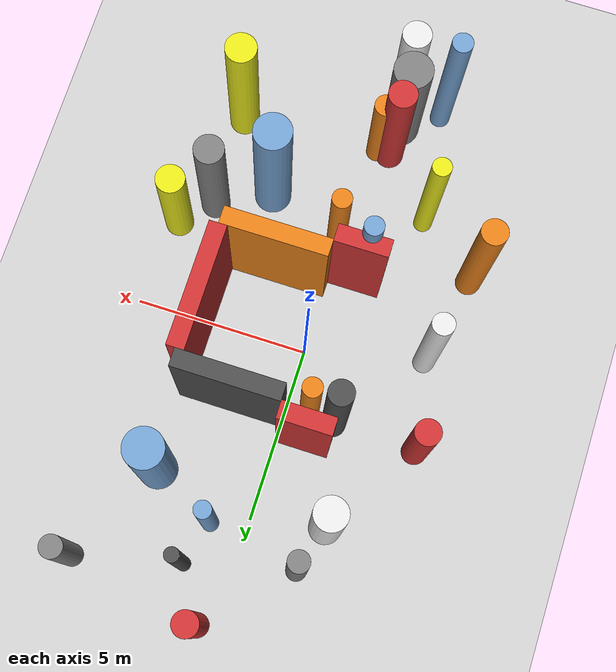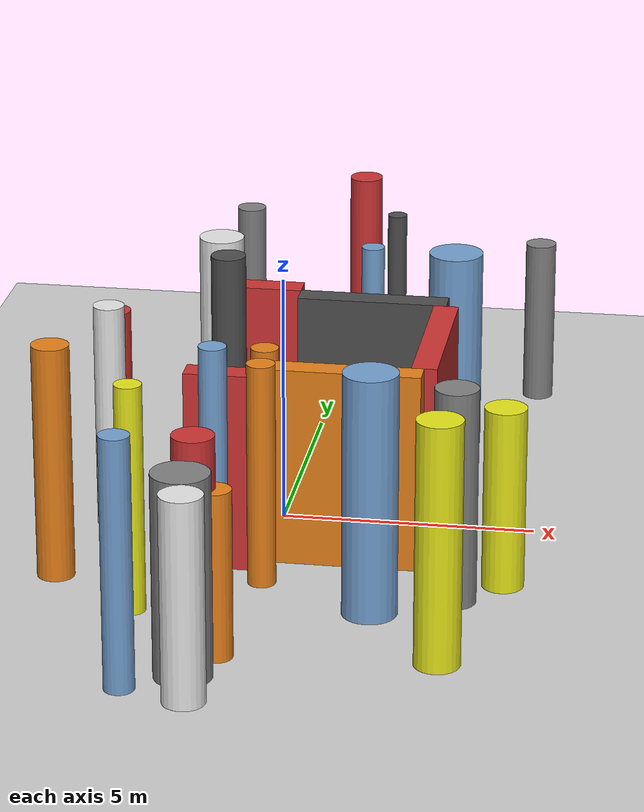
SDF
<?xml version='1.0'?>
<sdf version='1.6'>
  <world name='routeA_rl_v1__dense_recovery__rl_train__cul_de_sac_trap__000035'>
    <!-- Sun light -->
    <light name='sun' type='directional'>
      <cast_shadows>1</cast_shadows>
      <pose>0 0 10 0 0 0</pose>
      <diffuse>0.8 0.8 0.8 1</diffuse>
      <specular>0.2 0.2 0.2 1</specular>
      <attenuation>
        <range>1000</range>
        <constant>0.9</constant>
        <linear>0.01</linear>
        <quadratic>0.001</quadratic>
      </attenuation>
      <direction>-0.5 0.1 -0.9</direction>
    </light>

    <!-- Ground plane -->
    <model name='ground_plane'>
      <static>1</static>
      <link name='link'>
        <collision name='collision'>
          <geometry>
            <plane>
              <normal>0 0 1</normal>
              <size>100 100</size>
            </plane>
          </geometry>
          <surface>
            <contact>
              <collide_bitmask>65535</collide_bitmask>
              <ode/>
            </contact>
            <friction>
              <ode>
                <mu>100</mu>
                <mu2>50</mu2>
              </ode>
              <torsional><ode/></torsional>
            </friction>
            <bounce/>
          </surface>
          <max_contacts>10</max_contacts>
        </collision>
        <visual name='visual'>
          <cast_shadows>0</cast_shadows>
          <geometry>
            <plane>
              <normal>0 0 1</normal>
              <size>100 100</size>
            </plane>
          </geometry>
          <material>
            <script>
              <uri>file://media/materials/scripts/gazebo.material</uri>
              <n>Gazebo/Grey</n>
            </script>
          </material>
        </visual>
      </link>
    </model>

    <!-- Environment -->
    <magnetic_field>6e-06 2.3e-05 -4.2e-05</magnetic_field>
    <atmosphere type='adiabatic'/>
    <physics name='default_physics' default='0' type='ode'>
      <gravity>0 0 -9.8</gravity>
      <max_step_size>0.004</max_step_size>
      <real_time_factor>1</real_time_factor>
      <real_time_update_rate>250</real_time_update_rate>
    </physics>
    <scene>
      <ambient>0.4 0.4 0.4 1</ambient>
      <background>0.7 0.7 0.7 1</background>
      <shadows>1</shadows>
    </scene>
    <wind/>
    <spherical_coordinates>
      <surface_model>EARTH_WGS84</surface_model>
      <latitude_deg>0</latitude_deg>
      <longitude_deg>0</longitude_deg>
      <elevation>0</elevation>
      <heading_deg>0</heading_deg>
    </spherical_coordinates>

    <!-- ============ OBSTACLES (29) ============ -->
    <model name='trap_side_l'>
      <static>1</static>
      <link name='link'>
        <visual name='visual'>
          <geometry>
            <box>
              <size>3.0000 0.5000 4.0000</size>
            </box>
          </geometry>
          <material>
            <script>
              <n>Gazebo/Orange</n>
              <uri>file://media/materials/scripts/gazebo.material</uri>
            </script>
            <ambient>0.9 0.5 0.1 1</ambient>
          </material>
        </visual>
        <collision name='collision'>
          <geometry>
            <box>
              <size>3.0000 0.5000 4.0000</size>
            </box>
          </geometry>
          <max_contacts>10</max_contacts>
          <surface>
            <contact><ode/></contact>
            <bounce/>
            <friction>
              <ode><mu>1</mu><mu2>1</mu2></ode>
              <torsional><ode/></torsional>
            </friction>
          </surface>
        </collision>
      </link>
      <pose>1.5000 -2.0000 2.0000 0 0 0.0000</pose>
    </model>

    <model name='trap_side_r'>
      <static>1</static>
      <link name='link'>
        <visual name='visual'>
          <geometry>
            <box>
              <size>3.0000 0.5000 4.0000</size>
            </box>
          </geometry>
          <material>
            <script>
              <n>Gazebo/DarkGrey</n>
              <uri>file://media/materials/scripts/gazebo.material</uri>
            </script>
            <ambient>0.3 0.3 0.3 1</ambient>
          </material>
        </visual>
        <collision name='collision'>
          <geometry>
            <box>
              <size>3.0000 0.5000 4.0000</size>
            </box>
          </geometry>
          <max_contacts>10</max_contacts>
          <surface>
            <contact><ode/></contact>
            <bounce/>
            <friction>
              <ode><mu>1</mu><mu2>1</mu2></ode>
              <torsional><ode/></torsional>
            </friction>
          </surface>
        </collision>
      </link>
      <pose>1.5000 2.0000 2.0000 0 0 0.0000</pose>
    </model>

    <model name='trap_back'>
      <static>1</static>
      <link name='link'>
        <visual name='visual'>
          <geometry>
            <box>
              <size>0.5000 3.5000 4.0000</size>
            </box>
          </geometry>
          <material>
            <script>
              <n>Gazebo/Red</n>
              <uri>file://media/materials/scripts/gazebo.material</uri>
            </script>
            <ambient>0.8 0.2 0.2 1</ambient>
          </material>
        </visual>
        <collision name='collision'>
          <geometry>
            <box>
              <size>0.5000 3.5000 4.0000</size>
            </box>
          </geometry>
          <max_contacts>10</max_contacts>
          <surface>
            <contact><ode/></contact>
            <bounce/>
            <friction>
              <ode><mu>1</mu><mu2>1</mu2></ode>
              <torsional><ode/></torsional>
            </friction>
          </surface>
        </collision>
      </link>
      <pose>3.0000 0.0000 2.0000 0 0 0.0000</pose>
    </model>

    <model name='trap_funnel_l'>
      <static>1</static>
      <link name='link'>
        <visual name='visual'>
          <geometry>
            <box>
              <size>1.5000 0.5000 4.0000</size>
            </box>
          </geometry>
          <material>
            <script>
              <n>Gazebo/Red</n>
              <uri>file://media/materials/scripts/gazebo.material</uri>
            </script>
            <ambient>0.8 0.2 0.2 1</ambient>
          </material>
        </visual>
        <collision name='collision'>
          <geometry>
            <box>
              <size>1.5000 0.5000 4.0000</size>
            </box>
          </geometry>
          <max_contacts>10</max_contacts>
          <surface>
            <contact><ode/></contact>
            <bounce/>
            <friction>
              <ode><mu>1</mu><mu2>1</mu2></ode>
              <torsional><ode/></torsional>
            </friction>
          </surface>
        </collision>
      </link>
      <pose>-0.7500 -2.4500 2.0000 0 0 0.0000</pose>
    </model>

    <model name='trap_funnel_r'>
      <static>1</static>
      <link name='link'>
        <visual name='visual'>
          <geometry>
            <box>
              <size>1.5000 0.5000 4.0000</size>
            </box>
          </geometry>
          <material>
            <script>
              <n>Gazebo/Red</n>
              <uri>file://media/materials/scripts/gazebo.material</uri>
            </script>
            <ambient>0.8 0.2 0.2 1</ambient>
          </material>
        </visual>
        <collision name='collision'>
          <geometry>
            <box>
              <size>1.5000 0.5000 4.0000</size>
            </box>
          </geometry>
          <max_contacts>10</max_contacts>
          <surface>
            <contact><ode/></contact>
            <bounce/>
            <friction>
              <ode><mu>1</mu><mu2>1</mu2></ode>
              <torsional><ode/></torsional>
            </friction>
          </surface>
        </collision>
      </link>
      <pose>-0.7500 2.4500 2.0000 0 0 0.0000</pose>
    </model>

    <model name='trap_scatter_0'>
      <static>1</static>
      <link name='link'>
        <visual name='visual'>
          <geometry>
            <cylinder>
              <radius>0.2419</radius>
              <length>3.8888</length>
            </cylinder>
          </geometry>
          <material>
            <script>
              <n>Gazebo/Blue</n>
              <uri>file://media/materials/scripts/gazebo.material</uri>
            </script>
            <ambient>0.447 0.624 0.812 1</ambient>
          </material>
        </visual>
        <collision name='collision'>
          <geometry>
            <cylinder>
              <radius>0.2419</radius>
              <length>3.8888</length>
            </cylinder>
          </geometry>
          <max_contacts>10</max_contacts>
          <surface>
            <contact><ode/></contact>
            <bounce/>
            <friction>
              <ode><mu>1</mu><mu2>1</mu2></ode>
              <torsional><ode/></torsional>
            </friction>
          </surface>
        </collision>
      </link>
      <pose>1.0242 5.4147 1.9444 0 0 0.0000</pose>
    </model>

    <model name='trap_scatter_1'>
      <static>1</static>
      <link name='link'>
        <visual name='visual'>
          <geometry>
            <cylinder>
              <radius>0.3171</radius>
              <length>3.3295</length>
            </cylinder>
          </geometry>
          <material>
            <script>
              <n>Gazebo/Orange</n>
              <uri>file://media/materials/scripts/gazebo.material</uri>
            </script>
            <ambient>0.9 0.5 0.1 1</ambient>
          </material>
        </visual>
        <collision name='collision'>
          <geometry>
            <cylinder>
              <radius>0.3171</radius>
              <length>3.3295</length>
            </cylinder>
          </geometry>
          <max_contacts>10</max_contacts>
          <surface>
            <contact><ode/></contact>
            <bounce/>
            <friction>
              <ode><mu>1</mu><mu2>1</mu2></ode>
              <torsional><ode/></torsional>
            </friction>
          </surface>
        </collision>
      </link>
      <pose>-0.1936 -6.5398 1.6647 0 0 0.0000</pose>
    </model>

    <model name='trap_scatter_2'>
      <static>1</static>
      <link name='link'>
        <visual name='visual'>
          <geometry>
            <cylinder>
              <radius>0.3630</radius>
              <length>3.5282</length>
            </cylinder>
          </geometry>
          <material>
            <script>
              <n>Gazebo/Red</n>
              <uri>file://media/materials/scripts/gazebo.material</uri>
            </script>
            <ambient>0.8 0.2 0.2 1</ambient>
          </material>
        </visual>
        <collision name='collision'>
          <geometry>
            <cylinder>
              <radius>0.3630</radius>
              <length>3.5282</length>
            </cylinder>
          </geometry>
          <max_contacts>10</max_contacts>
          <surface>
            <contact><ode/></contact>
            <bounce/>
            <friction>
              <ode><mu>1</mu><mu2>1</mu2></ode>
              <torsional><ode/></torsional>
            </friction>
          </surface>
        </collision>
      </link>
      <pose>-3.7858 1.7828 1.7641 0 0 0.0000</pose>
    </model>

    <model name='trap_scatter_3'>
      <static>1</static>
      <link name='link'>
        <visual name='visual'>
          <geometry>
            <cylinder>
              <radius>0.2759</radius>
              <length>4.4942</length>
            </cylinder>
          </geometry>
          <material>
            <script>
              <n>Gazebo/Orange</n>
              <uri>file://media/materials/scripts/gazebo.material</uri>
            </script>
            <ambient>0.9 0.5 0.1 1</ambient>
          </material>
        </visual>
        <collision name='collision'>
          <geometry>
            <cylinder>
              <radius>0.2759</radius>
              <length>4.4942</length>
            </cylinder>
          </geometry>
          <max_contacts>10</max_contacts>
          <surface>
            <contact><ode/></contact>
            <bounce/>
            <friction>
              <ode><mu>1</mu><mu2>1</mu2></ode>
              <torsional><ode/></torsional>
            </friction>
          </surface>
        </collision>
      </link>
      <pose>0.0906 -3.2009 2.2471 0 0 0.0000</pose>
    </model>

    <model name='trap_scatter_4'>
      <static>1</static>
      <link name='link'>
        <visual name='visual'>
          <geometry>
            <cylinder>
              <radius>0.5318</radius>
              <length>4.8562</length>
            </cylinder>
          </geometry>
          <material>
            <script>
              <n>Gazebo/Blue</n>
              <uri>file://media/materials/scripts/gazebo.material</uri>
            </script>
            <ambient>0.447 0.624 0.812 1</ambient>
          </material>
        </visual>
        <collision name='collision'>
          <geometry>
            <cylinder>
              <radius>0.5318</radius>
              <length>4.8562</length>
            </cylinder>
          </geometry>
          <max_contacts>10</max_contacts>
          <surface>
            <contact><ode/></contact>
            <bounce/>
            <friction>
              <ode><mu>1</mu><mu2>1</mu2></ode>
              <torsional><ode/></torsional>
            </friction>
          </surface>
        </collision>
      </link>
      <pose>2.3197 -4.2687 2.4281 0 0 0.0000</pose>
    </model>

    <model name='trap_scatter_5'>
      <static>1</static>
      <link name='link'>
        <visual name='visual'>
          <geometry>
            <cylinder>
              <radius>0.2892</radius>
              <length>4.9316</length>
            </cylinder>
          </geometry>
          <material>
            <script>
              <n>Gazebo/Blue</n>
              <uri>file://media/materials/scripts/gazebo.material</uri>
            </script>
            <ambient>0.447 0.624 0.812 1</ambient>
          </material>
        </visual>
        <collision name='collision'>
          <geometry>
            <cylinder>
              <radius>0.2892</radius>
              <length>4.9316</length>
            </cylinder>
          </geometry>
          <max_contacts>10</max_contacts>
          <surface>
            <contact><ode/></contact>
            <bounce/>
            <friction>
              <ode><mu>1</mu><mu2>1</mu2></ode>
              <torsional><ode/></torsional>
            </friction>
          </surface>
        </collision>
      </link>
      <pose>-1.6786 -8.1320 2.4658 0 0 0.0000</pose>
    </model>

    <model name='trap_scatter_6'>
      <static>1</static>
      <link name='link'>
        <visual name='visual'>
          <geometry>
            <cylinder>
              <radius>0.3080</radius>
              <length>4.5846</length>
            </cylinder>
          </geometry>
          <material>
            <script>
              <n>Gazebo/White</n>
              <uri>file://media/materials/scripts/gazebo.material</uri>
            </script>
            <ambient>0.9 0.9 0.9 1</ambient>
          </material>
        </visual>
        <collision name='collision'>
          <geometry>
            <cylinder>
              <radius>0.3080</radius>
              <length>4.5846</length>
            </cylinder>
          </geometry>
          <max_contacts>10</max_contacts>
          <surface>
            <contact><ode/></contact>
            <bounce/>
            <friction>
              <ode><mu>1</mu><mu2>1</mu2></ode>
              <torsional><ode/></torsional>
            </friction>
          </surface>
        </collision>
      </link>
      <pose>-3.3160 -0.7744 2.2923 0 0 0.0000</pose>
    </model>

    <model name='trap_scatter_7'>
      <static>1</static>
      <link name='link'>
        <visual name='visual'>
          <geometry>
            <cylinder>
              <radius>0.4226</radius>
              <length>4.3386</length>
            </cylinder>
          </geometry>
          <material>
            <script>
              <n>Gazebo/Grey</n>
              <uri>file://media/materials/scripts/gazebo.material</uri>
            </script>
            <ambient>0.5 0.5 0.5 1</ambient>
          </material>
        </visual>
        <collision name='collision'>
          <geometry>
            <cylinder>
              <radius>0.4226</radius>
              <length>4.3386</length>
            </cylinder>
          </geometry>
          <max_contacts>10</max_contacts>
          <surface>
            <contact><ode/></contact>
            <bounce/>
            <friction>
              <ode><mu>1</mu><mu2>1</mu2></ode>
              <torsional><ode/></torsional>
            </friction>
          </surface>
        </collision>
      </link>
      <pose>3.8293 -3.4850 2.1693 0 0 0.0000</pose>
    </model>

    <model name='trap_scatter_8'>
      <static>1</static>
      <link name='link'>
        <visual name='visual'>
          <geometry>
            <cylinder>
              <radius>0.2954</radius>
              <length>4.4601</length>
            </cylinder>
          </geometry>
          <material>
            <script>
              <n>Gazebo/Grey</n>
              <uri>file://media/materials/scripts/gazebo.material</uri>
            </script>
            <ambient>0.5 0.5 0.5 1</ambient>
          </material>
        </visual>
        <collision name='collision'>
          <geometry>
            <cylinder>
              <radius>0.2954</radius>
              <length>4.4601</length>
            </cylinder>
          </geometry>
          <max_contacts>10</max_contacts>
          <surface>
            <contact><ode/></contact>
            <bounce/>
            <friction>
              <ode><mu>1</mu><mu2>1</mu2></ode>
              <torsional><ode/></torsional>
            </friction>
          </surface>
        </collision>
      </link>
      <pose>-1.6339 5.9256 2.2301 0 0 0.0000</pose>
    </model>

    <model name='trap_scatter_9'>
      <static>1</static>
      <link name='link'>
        <visual name='visual'>
          <geometry>
            <cylinder>
              <radius>0.3653</radius>
              <length>4.7331</length>
            </cylinder>
          </geometry>
          <material>
            <script>
              <n>Gazebo/Orange</n>
              <uri>file://media/materials/scripts/gazebo.material</uri>
            </script>
            <ambient>0.9 0.5 0.1 1</ambient>
          </material>
        </visual>
        <collision name='collision'>
          <geometry>
            <cylinder>
              <radius>0.3653</radius>
              <length>4.7331</length>
            </cylinder>
          </geometry>
          <max_contacts>10</max_contacts>
          <surface>
            <contact><ode/></contact>
            <bounce/>
            <friction>
              <ode><mu>1</mu><mu2>1</mu2></ode>
              <torsional><ode/></torsional>
            </friction>
          </surface>
        </collision>
      </link>
      <pose>-3.8827 -3.4439 2.3666 0 0 0.0000</pose>
    </model>

    <model name='trap_scatter_10'>
      <static>1</static>
      <link name='link'>
        <visual name='visual'>
          <geometry>
            <cylinder>
              <radius>0.3462</radius>
              <length>4.5172</length>
            </cylinder>
          </geometry>
          <material>
            <script>
              <n>Gazebo/Red</n>
              <uri>file://media/materials/scripts/gazebo.material</uri>
            </script>
            <ambient>0.8 0.2 0.2 1</ambient>
          </material>
        </visual>
        <collision name='collision'>
          <geometry>
            <cylinder>
              <radius>0.3462</radius>
              <length>4.5172</length>
            </cylinder>
          </geometry>
          <max_contacts>10</max_contacts>
          <surface>
            <contact><ode/></contact>
            <bounce/>
            <friction>
              <ode><mu>1</mu><mu2>1</mu2></ode>
              <torsional><ode/></torsional>
            </friction>
          </surface>
        </collision>
      </link>
      <pose>0.4982 8.1501 2.2586 0 0 0.0000</pose>
    </model>

    <model name='trap_scatter_11'>
      <static>1</static>
      <link name='link'>
        <visual name='visual'>
          <geometry>
            <cylinder>
              <radius>0.4648</radius>
              <length>4.2395</length>
            </cylinder>
          </geometry>
          <material>
            <script>
              <n>Gazebo/White</n>
              <uri>file://media/materials/scripts/gazebo.material</uri>
            </script>
            <ambient>0.9 0.9 0.9 1</ambient>
          </material>
        </visual>
        <collision name='collision'>
          <geometry>
            <cylinder>
              <radius>0.4648</radius>
              <length>4.2395</length>
            </cylinder>
          </geometry>
          <max_contacts>10</max_contacts>
          <surface>
            <contact><ode/></contact>
            <bounce/>
            <friction>
              <ode><mu>1</mu><mu2>1</mu2></ode>
              <torsional><ode/></torsional>
            </friction>
          </surface>
        </collision>
      </link>
      <pose>-2.0403 4.5721 2.1197 0 0 0.0000</pose>
    </model>

    <model name='trap_scatter_13'>
      <static>1</static>
      <link name='link'>
        <visual name='visual'>
          <geometry>
            <cylinder>
              <radius>0.4099</radius>
              <length>4.0232</length>
            </cylinder>
          </geometry>
          <material>
            <script>
              <n>Gazebo/White</n>
              <uri>file://media/materials/scripts/gazebo.material</uri>
            </script>
            <ambient>0.9 0.9 0.9 1</ambient>
          </material>
        </visual>
        <collision name='collision'>
          <geometry>
            <cylinder>
              <radius>0.4099</radius>
              <length>4.0232</length>
            </cylinder>
          </geometry>
          <max_contacts>10</max_contacts>
          <surface>
            <contact><ode/></contact>
            <bounce/>
            <friction>
              <ode><mu>1</mu><mu2>1</mu2></ode>
              <torsional><ode/></torsional>
            </friction>
          </surface>
        </collision>
      </link>
      <pose>-0.4356 -8.4667 2.0116 0 0 0.0000</pose>
    </model>

    <model name='trap_scatter_14'>
      <static>1</static>
      <link name='link'>
        <visual name='visual'>
          <geometry>
            <cylinder>
              <radius>0.2852</radius>
              <length>3.0141</length>
            </cylinder>
          </geometry>
          <material>
            <script>
              <n>Gazebo/Orange</n>
              <uri>file://media/materials/scripts/gazebo.material</uri>
            </script>
            <ambient>0.9 0.5 0.1 1</ambient>
          </material>
        </visual>
        <collision name='collision'>
          <geometry>
            <cylinder>
              <radius>0.2852</radius>
              <length>3.0141</length>
            </cylinder>
          </geometry>
          <max_contacts>10</max_contacts>
          <surface>
            <contact><ode/></contact>
            <bounce/>
            <friction>
              <ode><mu>1</mu><mu2>1</mu2></ode>
              <torsional><ode/></torsional>
            </friction>
          </surface>
        </collision>
      </link>
      <pose>-0.6222 1.4708 1.5071 0 0 0.0000</pose>
    </model>

    <model name='trap_scatter_15'>
      <static>1</static>
      <link name='link'>
        <visual name='visual'>
          <geometry>
            <cylinder>
              <radius>0.4393</radius>
              <length>4.8132</length>
            </cylinder>
          </geometry>
          <material>
            <script>
              <n>Gazebo/Yellow</n>
              <uri>file://media/materials/scripts/gazebo.material</uri>
            </script>
            <ambient>0.9 0.9 0.1 1</ambient>
          </material>
        </visual>
        <collision name='collision'>
          <geometry>
            <cylinder>
              <radius>0.4393</radius>
              <length>4.8132</length>
            </cylinder>
          </geometry>
          <max_contacts>10</max_contacts>
          <surface>
            <contact><ode/></contact>
            <bounce/>
            <friction>
              <ode><mu>1</mu><mu2>1</mu2></ode>
              <torsional><ode/></torsional>
            </friction>
          </surface>
        </collision>
      </link>
      <pose>3.8429 -6.2671 2.4066 0 0 0.0000</pose>
    </model>

    <model name='trap_scatter_16'>
      <static>1</static>
      <link name='link'>
        <visual name='visual'>
          <geometry>
            <cylinder>
              <radius>0.2741</radius>
              <length>4.5985</length>
            </cylinder>
          </geometry>
          <material>
            <script>
              <n>Gazebo/Blue</n>
              <uri>file://media/materials/scripts/gazebo.material</uri>
            </script>
            <ambient>0.447 0.624 0.812 1</ambient>
          </material>
        </visual>
        <collision name='collision'>
          <geometry>
            <cylinder>
              <radius>0.2741</radius>
              <length>4.5985</length>
            </cylinder>
          </geometry>
          <max_contacts>10</max_contacts>
          <surface>
            <contact><ode/></contact>
            <bounce/>
            <friction>
              <ode><mu>1</mu><mu2>1</mu2></ode>
              <torsional><ode/></torsional>
            </friction>
          </surface>
        </collision>
      </link>
      <pose>-0.9172 -2.7087 2.2993 0 0 0.0000</pose>
    </model>

    <model name='trap_scatter_17'>
      <static>1</static>
      <link name='link'>
        <visual name='visual'>
          <geometry>
            <cylinder>
              <radius>0.2010</radius>
              <length>4.1803</length>
            </cylinder>
          </geometry>
          <material>
            <script>
              <n>Gazebo/DarkGrey</n>
              <uri>file://media/materials/scripts/gazebo.material</uri>
            </script>
            <ambient>0.3 0.3 0.3 1</ambient>
          </material>
        </visual>
        <collision name='collision'>
          <geometry>
            <cylinder>
              <radius>0.2010</radius>
              <length>4.1803</length>
            </cylinder>
          </geometry>
          <max_contacts>10</max_contacts>
          <surface>
            <contact><ode/></contact>
            <bounce/>
            <friction>
              <ode><mu>1</mu><mu2>1</mu2></ode>
              <torsional><ode/></torsional>
            </friction>
          </surface>
        </collision>
      </link>
      <pose>1.3663 6.6995 2.0901 0 0 0.0000</pose>
    </model>

    <model name='trap_scatter_18'>
      <static>1</static>
      <link name='link'>
        <visual name='visual'>
          <geometry>
            <cylinder>
              <radius>0.3163</radius>
              <length>3.4556</length>
            </cylinder>
          </geometry>
          <material>
            <script>
              <n>Gazebo/Grey</n>
              <uri>file://media/materials/scripts/gazebo.material</uri>
            </script>
            <ambient>0.5 0.5 0.5 1</ambient>
          </material>
        </visual>
        <collision name='collision'>
          <geometry>
            <cylinder>
              <radius>0.3163</radius>
              <length>3.4556</length>
            </cylinder>
          </geometry>
          <max_contacts>10</max_contacts>
          <surface>
            <contact><ode/></contact>
            <bounce/>
            <friction>
              <ode><mu>1</mu><mu2>1</mu2></ode>
              <torsional><ode/></torsional>
            </friction>
          </surface>
        </collision>
      </link>
      <pose>4.3705 7.4104 1.7278 0 0 0.0000</pose>
    </model>

    <model name='trap_scatter_19'>
      <static>1</static>
      <link name='link'>
        <visual name='visual'>
          <geometry>
            <cylinder>
              <radius>0.4017</radius>
              <length>4.3502</length>
            </cylinder>
          </geometry>
          <material>
            <script>
              <n>Gazebo/Red</n>
              <uri>file://media/materials/scripts/gazebo.material</uri>
            </script>
            <ambient>0.8 0.2 0.2 1</ambient>
          </material>
        </visual>
        <collision name='collision'>
          <geometry>
            <cylinder>
              <radius>0.4017</radius>
              <length>4.3502</length>
            </cylinder>
          </geometry>
          <max_contacts>10</max_contacts>
          <surface>
            <contact><ode/></contact>
            <bounce/>
            <friction>
              <ode><mu>1</mu><mu2>1</mu2></ode>
              <torsional><ode/></torsional>
            </friction>
          </surface>
        </collision>
      </link>
      <pose>-0.5802 -6.5292 2.1751 0 0 0.0000</pose>
    </model>

    <model name='trap_scatter_20'>
      <static>1</static>
      <link name='link'>
        <visual name='visual'>
          <geometry>
            <cylinder>
              <radius>0.2672</radius>
              <length>4.5648</length>
            </cylinder>
          </geometry>
          <material>
            <script>
              <n>Gazebo/Yellow</n>
              <uri>file://media/materials/scripts/gazebo.material</uri>
            </script>
            <ambient>0.9 0.9 0.1 1</ambient>
          </material>
        </visual>
        <collision name='collision'>
          <geometry>
            <cylinder>
              <radius>0.2672</radius>
              <length>4.5648</length>
            </cylinder>
          </geometry>
          <max_contacts>10</max_contacts>
          <surface>
            <contact><ode/></contact>
            <bounce/>
            <friction>
              <ode><mu>1</mu><mu2>1</mu2></ode>
              <torsional><ode/></torsional>
            </friction>
          </surface>
        </collision>
      </link>
      <pose>-2.1232 -4.7929 2.2824 0 0 0.0000</pose>
    </model>

    <model name='trap_scatter_21'>
      <static>1</static>
      <link name='link'>
        <visual name='visual'>
          <geometry>
            <cylinder>
              <radius>0.5515</radius>
              <length>3.9996</length>
            </cylinder>
          </geometry>
          <material>
            <script>
              <n>Gazebo/Grey</n>
              <uri>file://media/materials/scripts/gazebo.material</uri>
            </script>
            <ambient>0.5 0.5 0.5 1</ambient>
          </material>
        </visual>
        <collision name='collision'>
          <geometry>
            <cylinder>
              <radius>0.5515</radius>
              <length>3.9996</length>
            </cylinder>
          </geometry>
          <max_contacts>10</max_contacts>
          <surface>
            <contact><ode/></contact>
            <bounce/>
            <friction>
              <ode><mu>1</mu><mu2>1</mu2></ode>
              <torsional><ode/></torsional>
            </friction>
          </surface>
        </collision>
      </link>
      <pose>-0.6393 -7.4521 1.9998 0 0 0.0000</pose>
    </model>

    <model name='trap_scatter_22'>
      <static>1</static>
      <link name='link'>
        <visual name='visual'>
          <geometry>
            <cylinder>
              <radius>0.4096</radius>
              <length>3.6592</length>
            </cylinder>
          </geometry>
          <material>
            <script>
              <n>Gazebo/Yellow</n>
              <uri>file://media/materials/scripts/gazebo.material</uri>
            </script>
            <ambient>0.9 0.9 0.1 1</ambient>
          </material>
        </visual>
        <collision name='collision'>
          <geometry>
            <cylinder>
              <radius>0.4096</radius>
              <length>3.6592</length>
            </cylinder>
          </geometry>
          <max_contacts>10</max_contacts>
          <surface>
            <contact><ode/></contact>
            <bounce/>
            <friction>
              <ode><mu>1</mu><mu2>1</mu2></ode>
              <torsional><ode/></torsional>
            </friction>
          </surface>
        </collision>
      </link>
      <pose>4.6626 -2.6247 1.8296 0 0 0.0000</pose>
    </model>

    <model name='trap_scatter_23'>
      <static>1</static>
      <link name='link'>
        <visual name='visual'>
          <geometry>
            <cylinder>
              <radius>0.3504</radius>
              <length>4.8429</length>
            </cylinder>
          </geometry>
          <material>
            <script>
              <n>Gazebo/DarkGrey</n>
              <uri>file://media/materials/scripts/gazebo.material</uri>
            </script>
            <ambient>0.3 0.3 0.3 1</ambient>
          </material>
        </visual>
        <collision name='collision'>
          <geometry>
            <cylinder>
              <radius>0.3504</radius>
              <length>4.8429</length>
            </cylinder>
          </geometry>
          <max_contacts>10</max_contacts>
          <surface>
            <contact><ode/></contact>
            <bounce/>
            <friction>
              <ode><mu>1</mu><mu2>1</mu2></ode>
              <torsional><ode/></torsional>
            </friction>
          </surface>
        </collision>
      </link>
      <pose>-1.3951 1.7374 2.4214 0 0 0.0000</pose>
    </model>

    <model name='trap_scatter_24'>
      <static>1</static>
      <link name='link'>
        <visual name='visual'>
          <geometry>
            <cylinder>
              <radius>0.5556</radius>
              <length>4.1894</length>
            </cylinder>
          </geometry>
          <material>
            <script>
              <n>Gazebo/Blue</n>
              <uri>file://media/materials/scripts/gazebo.material</uri>
            </script>
            <ambient>0.447 0.624 0.812 1</ambient>
          </material>
        </visual>
        <collision name='collision'>
          <geometry>
            <cylinder>
              <radius>0.5556</radius>
              <length>4.1894</length>
            </cylinder>
          </geometry>
          <max_contacts>10</max_contacts>
          <surface>
            <contact><ode/></contact>
            <bounce/>
            <friction>
              <ode><mu>1</mu><mu2>1</mu2></ode>
              <torsional><ode/></torsional>
            </friction>
          </surface>
        </collision>
      </link>
      <pose>2.8827 4.4487 2.0947 0 0 0.0000</pose>
    </model>

    <!-- GUI camera -->
    <gui fullscreen='0'>
      <camera name='user_camera'>
        <pose>-15 0 18 0 0.85 0.15</pose>
        <view_controller>orbit</view_controller>
        <projection_type>perspective</projection_type>
      </camera>
    </gui>
  </world>
</sdf>
